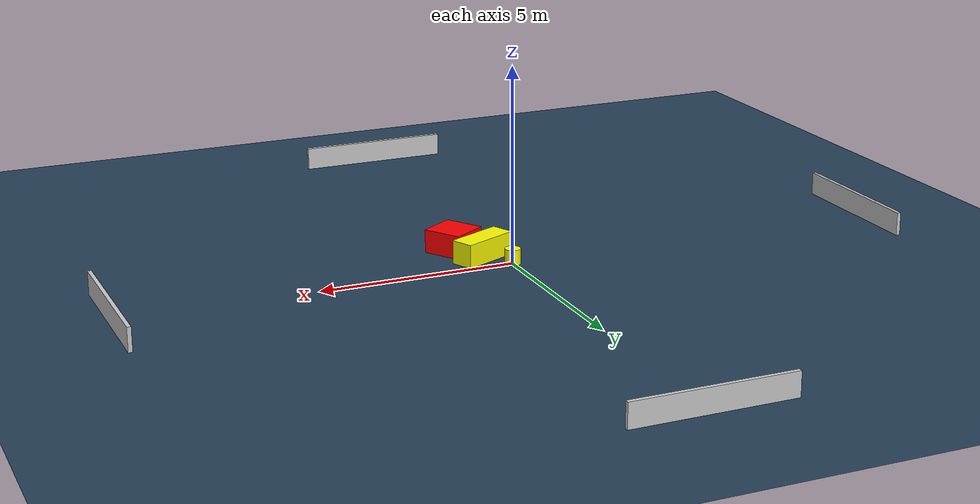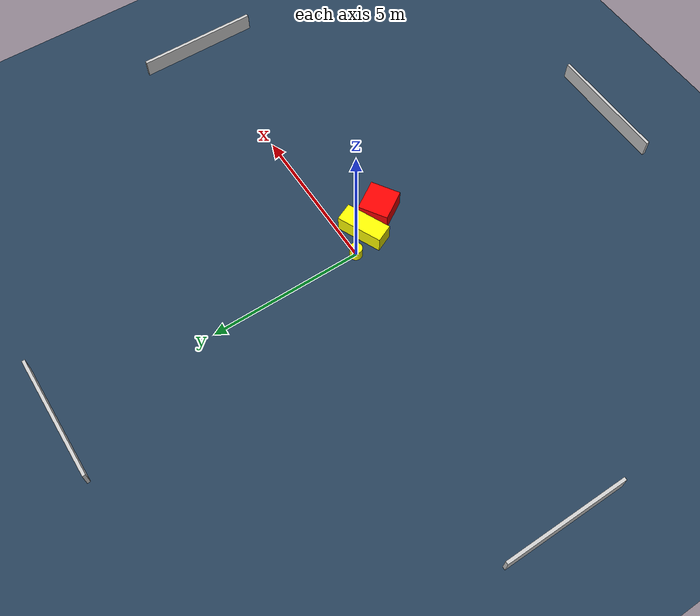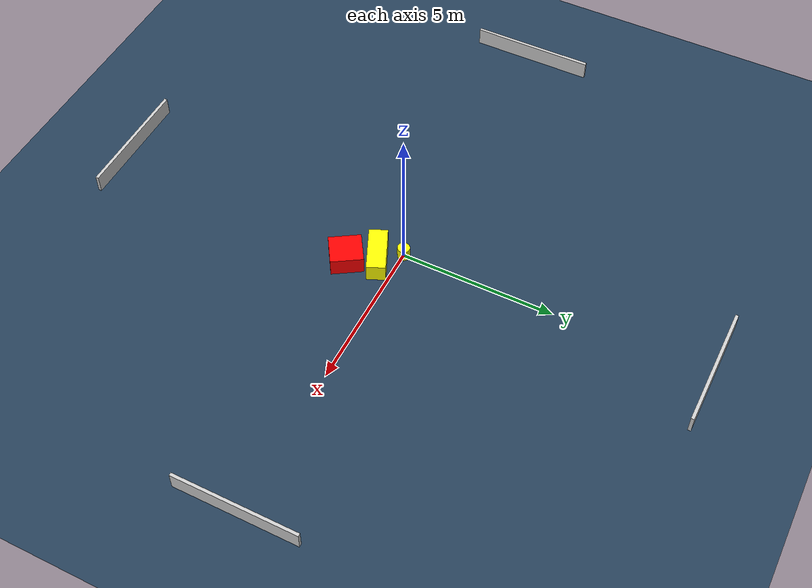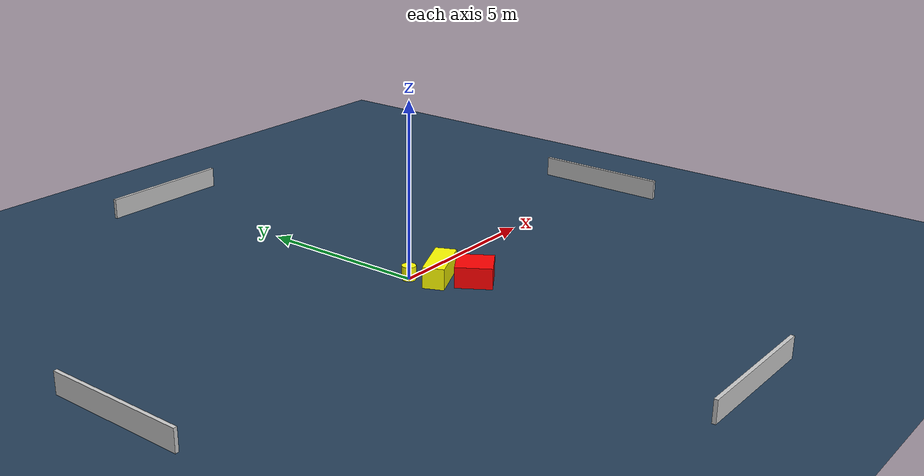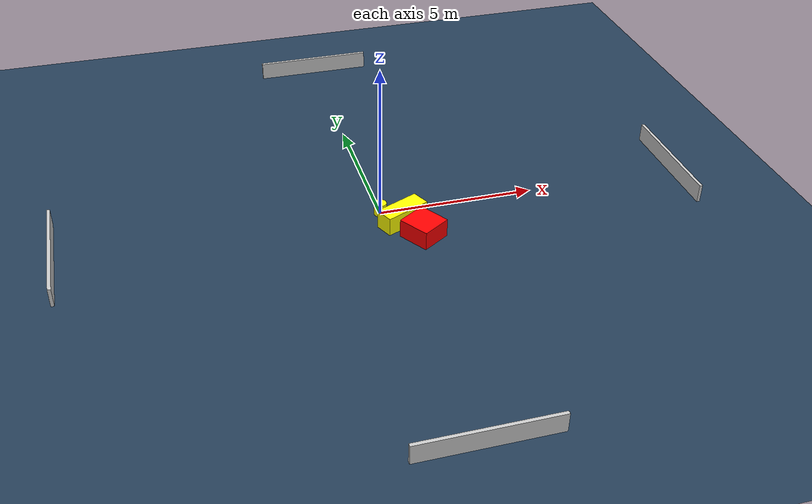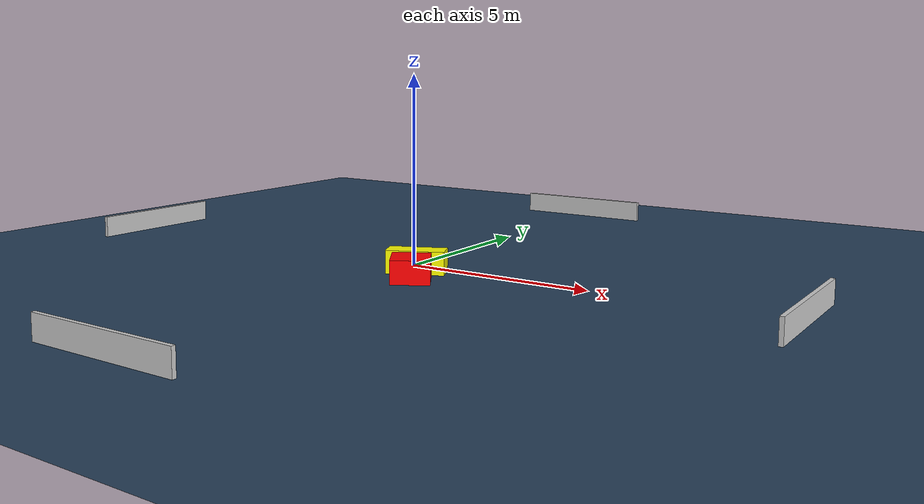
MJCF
<?xml version="1.0" ?>
<mujoco model="generated_environment">
  <option timestep="0.01" integrator="RK4" cone="elliptic"/>
  <default>
    <geom density="1"/>
  </default>
  <asset>
    <texture builtin="gradient" height="3072" name="skybox" rgb1="0.3 0.5 0.7" rgb2="0 0 0" type="skybox" width="512"/>
    <texture builtin="checker" height="300" name="groundplane" rgb1="0.2 0.3 0.4" rgb2="0.1 0.2 0.3" type="2d" width="300"/>
    <material name="groundplane" reflectance="0.2" texrepeat="5 5" texture="groundplane"/>
  </asset>
  <worldbody>
    <light dir="0 0 -1" directional="true" pos="0 0 1.5"/>
    <geom condim="3" friction="0.5 0.005 0.001" material="groundplane" name="floor" pos="0 0 0" size="0 0 0.05" type="plane"/>
    <body name="walls">
      <geom name="wall_1" condim="4" pos="-10.0 0.0 0.3" rgba="0.800000011920929 0.800000011920929 0.800000011920929 1.0" size="0.05 2.0 0.3" type="box"/>
      <geom name="wall_2" condim="4" pos="10.0 0.0 0.3" rgba="0.800000011920929 0.800000011920929 0.800000011920929 1.0" size="0.05 2.0 0.3" type="box"/>
      <geom name="wall_3" condim="4" pos="0.0 -10.0 0.3" rgba="0.800000011920929 0.800000011920929 0.800000011920929 1.0" size="2.0 0.05 0.3" type="box"/>
      <geom name="wall_4" condim="4" pos="0.0 10.0 0.3" rgba="0.800000011920929 0.800000011920929 0.800000011920929 1.0" size="2.0 0.05 0.3" type="box"/>
    </body>
    <body name="robot">
      <joint name="joint_x" type="slide" pos="0 0 0" axis="1 0 0"/>
      <joint name="joint_y" type="slide" pos="0 0 0" axis="0 1 0"/>
      <geom name="robot" type="cylinder" pos="0.0 0.0 0.2" size="0.2 0.2 0.0" mass="5.0" friction="1.0 0.005 0.0001" condim="4" rgba="1.0 1.0 0.0 1.0"/>
    </body>
    <body name="obstacle_1_movable">
      <geom name="obstacle_1_movable" condim="4" pos="0.5379901557142691 -0.6411622091224594 0.3" euler="0 0 114.21694324713053" friction="0.0 0.005 0.001" rgba="1.0 1.0 0.0 1.0" size="0.30101267226481543 0.7515696562682421 0.3" type="box" mass="0.1"/>
      <joint type="free"/>
    </body>
    <body name="obstacle_2_static">
      <geom name="obstacle_2_static" condim="4" pos="0.9646027301635051 -1.5023199597369092 0.3" euler="0 0 122.53906751924042" friction="0.0 0.005 0.001" rgba="1.0 0.0 0.0 1.0" size="0.5175397924850076 0.4932780677395 0.3" type="box"/>
    </body>
  </worldbody>
  <actuator>
    <motor name="actuator_x" joint="joint_x" gear="1" ctrlrange="-1 1"/>
    <motor name="actuator_y" joint="joint_y" gear="1" ctrlrange="-1 1"/>
  </actuator>
</mujoco>
